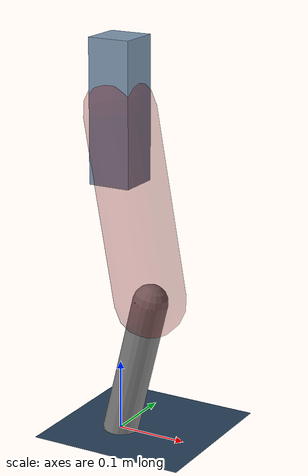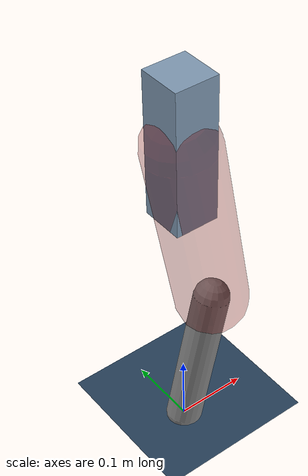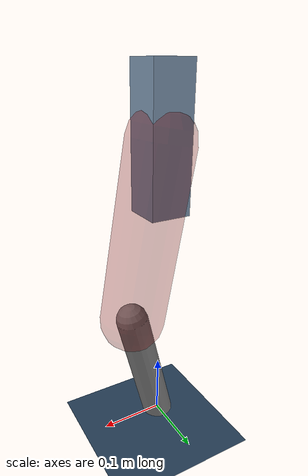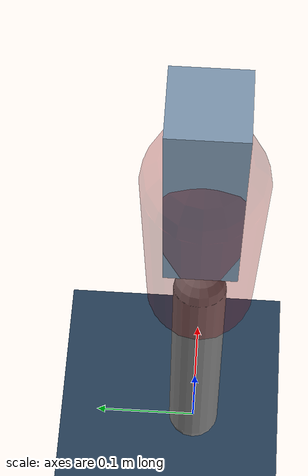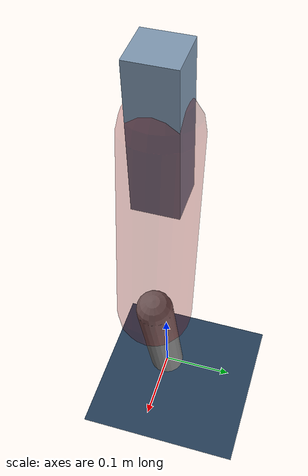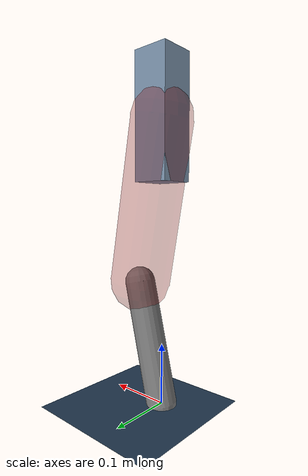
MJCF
<mujoco model="Hopper2D">
	<compiler inertiafromgeom="true" angle="radian" />
	<option timestep="0.001" integrator="implicit" cone="elliptic" solver="Newton" tolerance="1e-10" />

	<default>
		<geom contype="1" conaffinity="1" condim="3" friction="2 0.005 0.0001" solref="0.005 1" />
		<joint limited="true" damping="0.1" />
	</default>

	<asset>
		<texture name="skybox" type="skybox" builtin="gradient" rgb1=".4 .6 .8" rgb2="0 0 0" width="800" height="800" />
		<texture name="grid" type="2d" builtin="checker" rgb1=".1 .2 .3" rgb2=".2 .3 .4" width="300" height="300" mark="edge" markrgb=".2 .3 .4" />
		<material name="ground" texture="grid" texrepeat="1 1" texuniform="true" reflectance="0.1" />
		<material name="leg" rgba="0.5 0.6 0.7 1" />
	</asset>

	<worldbody>

		<geom name="floor" type="plane" size="5 5 0.25" material="ground" />

		<light directional="false" diffuse="0.8 0.8 0.8" specular="0.3 0.3 0.3" pos="0 0 2" dir="0 0 -1" />
		<light mode="targetbodycom" target="base" directional="false" diffuse="0.8 0.8 0.8" specular="0.3 0.3 0.3" pos="0 0 2" dir="0 0 -1" />

		<camera name="fixed" pos="0 -2 1" xyaxes="1 0 0 0 0 1" />
		<camera name="tracking" mode="trackcom" pos="0 -3 1" />

		<body name="root" pos="0 0 0.46201404100249177">
			<joint name="slide_x" type="slide" axis="1 0 0" range="-100 100" />
			<joint name="slide_z" type="slide" axis="0 0 1" range="0 10" />

			<body name="base" pos="0 0 0">
				<geom name="torso" type="box" size="0.03 0.03 0.1" mass="1.7770000000000001" material="leg" />

				<body name="link1" pos="0 0 0" euler="0 1.391382674868559 0">
					<joint type="hinge" axis="0 -1 0" pos="0 0 0" name="hinge1" limited="true" range="-3.14 3.14" stiffness="0" damping="0.1" />
					<geom name="thigh" type="capsule" fromto="0 0 0 0.2681519951466264 0 0" size="0.05" rgba="0.5 0 0 0.3" mass="0.9037951873812287" />

					<body name="link2" pos="0.2681519951466264 0 0" euler="0 0.4163539501275892 0">
						<joint type="hinge" axis="0 -1 0" pos="0 0 0" name="hinge2" limited="true" range="-3.14 3.14" stiffness="0" damping="0.1" />
						<geom name="shank" type="capsule" fromto="0 0 0 0.20386204585586537 0 0" size="0.025" mass="0.40417584127027884" />

					</body>
				</body>
			</body>
		</body>
	</worldbody>

	<actuator>
		<motor name="torque1" joint="hinge1" ctrlrange="-53.976254750201775 53.976254750201775" ctrllimited="true" gear="1" />
		<motor name="torque2" joint="hinge2" ctrlrange="-67.51806634314794 67.51806634314794" ctrllimited="true" gear="1" />
	</actuator>
</mujoco>
